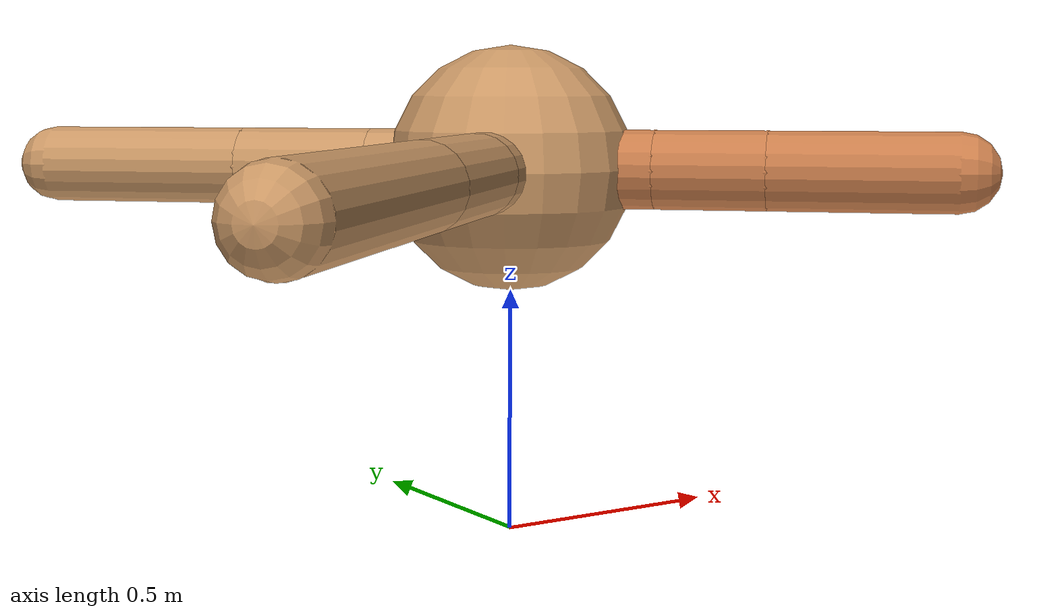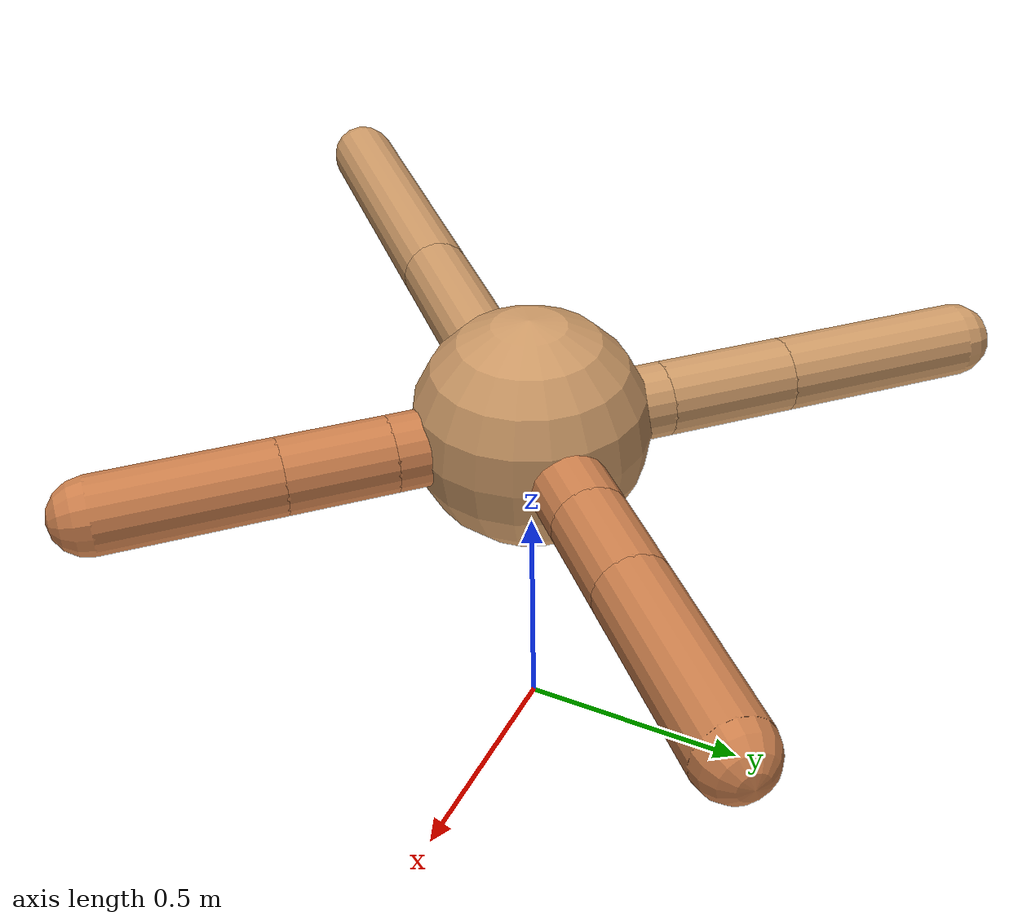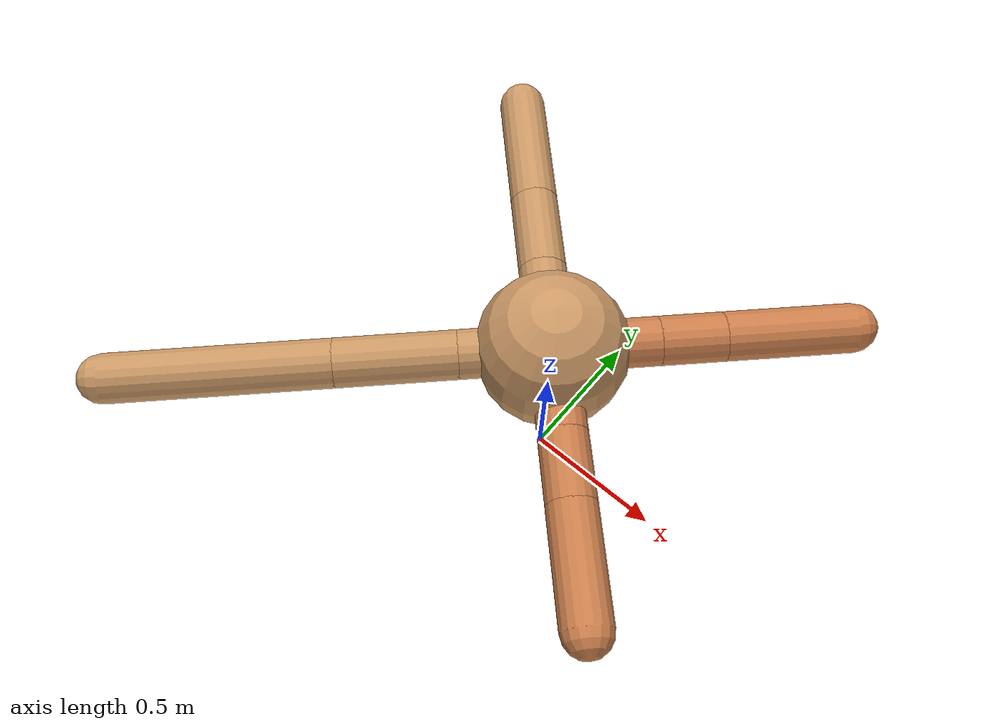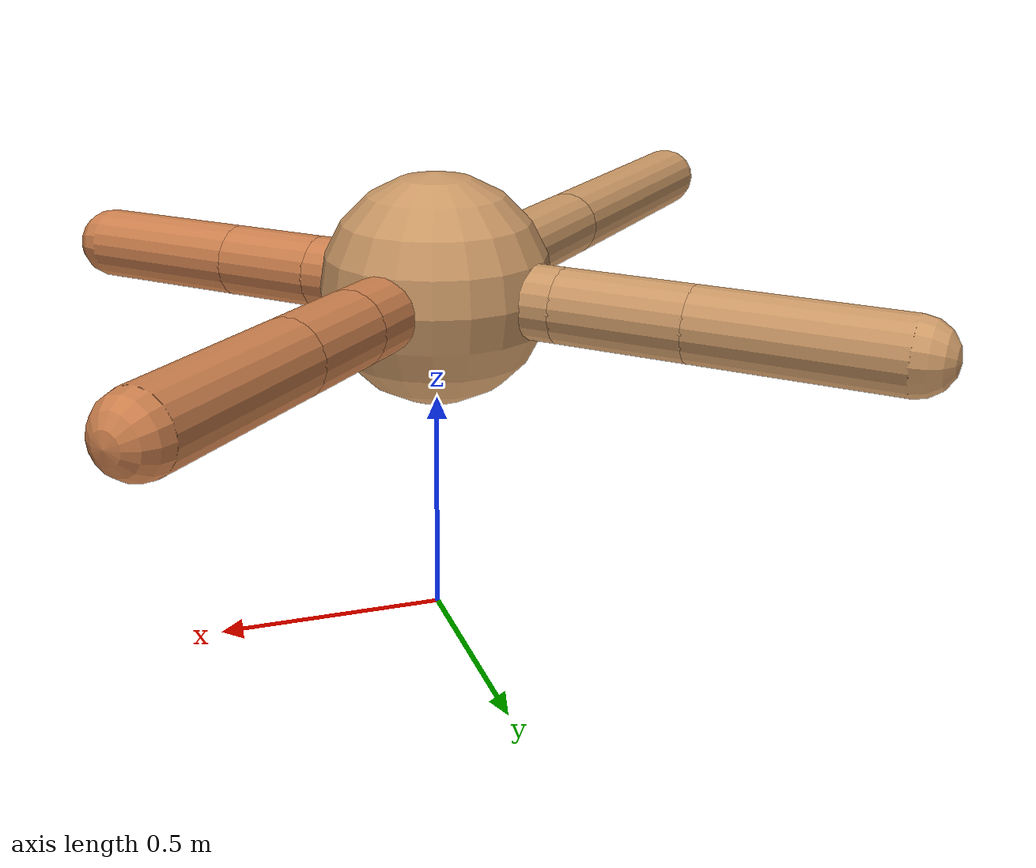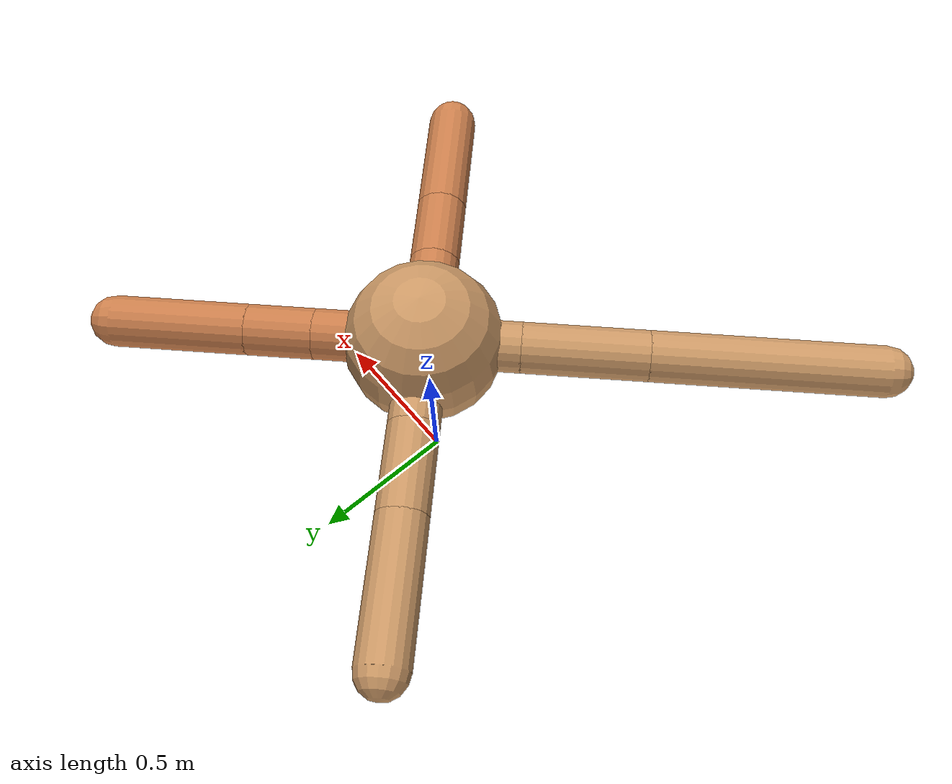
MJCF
<mujoco model="ant">
  <compiler angle="degree" coordinate="local" inertiafromgeom="true" />
  <option integrator="RK4" timestep="0.01" />
  <custom>
    <numeric data="0.0 0.0 0.55 1.0 0.0 0.0 0.0 0.0 1.0 0.0 -1.0 0.0 -1.0 0.0 1.0" name="init_qpos" />
  </custom>
  <default>
    <joint armature="1" damping="1" limited="true" />
    <geom conaffinity="0" condim="3" density="5.0" friction="1.5 0.1 0.1" margin="0.01" rgba="0.8 0.6 0.4 1" />
  </default>
  <worldbody>
    <body name="torso" pos="0 0 0.75">
      <geom name="torso_geom" pos="0 0 0" size="0.25" type="sphere" />

      <body name="front_left_leg" pos="0 0 0">
        <geom fromto="0.0 0.0 0.0 0.24146564987825805 0.24146564987825805 0.0" name="aux_1_geom" size="0.08" type="capsule" rgba=".8 .5 .3 1" />
        <body name="aux_1" pos="0.24146564987825805 0.24146564987825805 0.0">
          <joint axis="0 0 1" name="hip_1" pos="0.0 0.0 0.0" range="-40 40" type="hinge" />
          <geom fromto="0.0 0.0 0.0 0.14740761378490072 0.14740761378490072 0.0" name="left_leg_geom" size="0.08" type="capsule" rgba=".8 .5 .3 1" />
          <body pos="0.14740761378490072 0.14740761378490072 0.0" name="front_left_foot">
            <joint axis="-1 1 0" name="ankle_1" pos="0.0 0.0 0.0" range="30 100" type="hinge" />
            <geom fromto="0.0 0.0 0.0 0.29543960033876776 0.29543960033876776 0.0" name="left_ankle_geom" size="0.08" type="capsule" rgba=".8 .5 .3 1" />
          </body>
        </body>
      </body>
      <body name="front_right_leg" pos="0 0 0">
        <geom fromto="0.0 0.0 0.0 -0.2079261327577403 0.2079261327577403 0.0" name="aux_2_geom" size="0.08" type="capsule" />
        <body name="aux_2" pos="-0.2079261327577403 0.2079261327577403 0.0">
          <joint axis="0 0 1" name="hip_2" pos="0.0 0.0 0.0" range="-40 40" type="hinge" />
          <geom fromto="0.0 0.0 0.0 -0.19715891547358463 0.19715891547358463 0.0" name="right_leg_geom" size="0.08" type="capsule" />
          <body pos="-0.19715891547358463 0.19715891547358463 0.0" name="front_right_foot">
            <joint axis="1 1 0" name="ankle_2" pos="0.0 0.0 0.0" range="-100 -30" type="hinge" />
            <geom fromto="0.0 0.0 0.0 -0.30270316878486336 0.30270316878486336 0.0" name="right_ankle_geom" size="0.08" type="capsule" />
          </body>
        </body>
      </body>
      <body name="left_back_leg" pos="0 0 0">
        <geom fromto="0.0 0.0 0.0 -0.21251892159956798 -0.21251892159956798 0.0" name="aux_3_geom" size="0.08" type="capsule" />
        <body name="aux_3" pos="-0.21251892159956798 -0.21251892159956798 0.0">
          <joint axis="0 0 1" name="hip_3" pos="0.0 0.0 0.0" range="-40 40" type="hinge" />
          <geom fromto="0.0 0.0 0.0 -0.27700482940176935 -0.27700482940176935 0.0" name="back_leg_geom" size="0.08" type="capsule" />
          <body pos="-0.27700482940176935 -0.27700482940176935 0.0" name="left_back_foot">
            <joint axis="-1 1 0" name="ankle_3" pos="0.0 0.0 0.0" range="-100 -30" type="hinge" />
            <geom fromto="0.0 0.0 0.0 -0.5104906376486346 -0.5104906376486346 0.0" name="third_ankle_geom" size="0.08" type="capsule" />
          </body>
        </body>
      </body>
      <body name="right_back_leg" pos="0 0 0">
        <geom fromto="0.0 0.0 0.0 0.20964024750716154 -0.20964024750716154 0.0" name="aux_4_geom" size="0.08" type="capsule" rgba=".8 .5 .3 1" />
        <body name="aux_4" pos="0.20964024750716154 -0.20964024750716154 0.0">
          <joint axis="0 0 1" name="hip_4" pos="0.0 0.0 0.0" range="-40 40" type="hinge" />
          <geom fromto="0.0 0.0 0.0 0.15761464132183184 -0.15761464132183184 0.0" name="rightback_leg_geom" size="0.08" type="capsule" rgba=".8 .5 .3 1" />
          <body pos="0.15761464132183184 -0.15761464132183184 0.0" name="right_back_foot">
            <joint axis="1 1 0" name="ankle_4" pos="0.0 0.0 0.0" range="30 100" type="hinge" />
            <geom fromto="0.0 0.0 0.0 0.25984619256366787 -0.25984619256366787 0.0" name="fourth_ankle_geom" size="0.08" type="capsule" rgba=".8 .5 .3 1" />
          </body>
        </body>
      </body>
    </body>
  </worldbody>
  <actuator>
    <motor ctrllimited="true" ctrlrange="-1.0 1.0" joint="hip_4" gear="150" />
    <motor ctrllimited="true" ctrlrange="-1.0 1.0" joint="ankle_4" gear="150" />
    <motor ctrllimited="true" ctrlrange="-1.0 1.0" joint="hip_1" gear="150" />
    <motor ctrllimited="true" ctrlrange="-1.0 1.0" joint="ankle_1" gear="150" />
    <motor ctrllimited="true" ctrlrange="-1.0 1.0" joint="hip_2" gear="150" />
    <motor ctrllimited="true" ctrlrange="-1.0 1.0" joint="ankle_2" gear="150" />
    <motor ctrllimited="true" ctrlrange="-1.0 1.0" joint="hip_3" gear="150" />
    <motor ctrllimited="true" ctrlrange="-1.0 1.0" joint="ankle_3" gear="150" />
  </actuator>
</mujoco>
